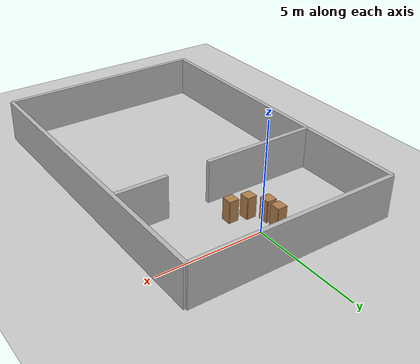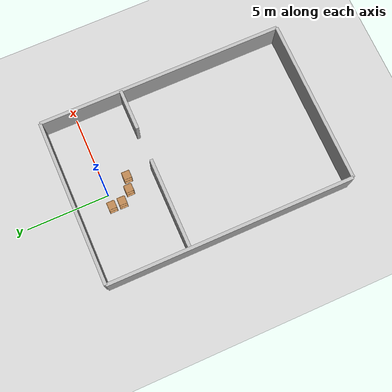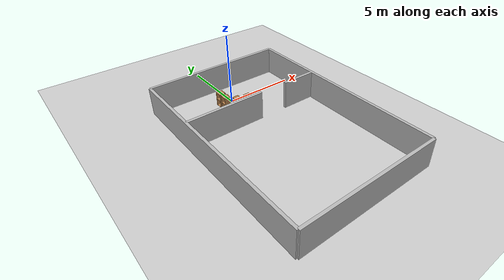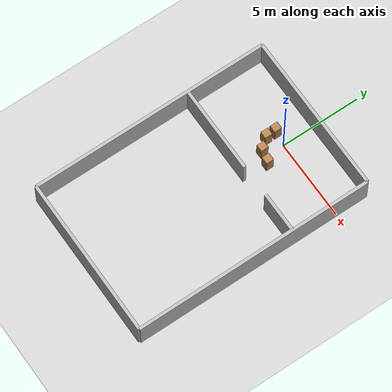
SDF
<sdf version="1.6">
 <world name="default">
  <physics name="default_physics" default="0" type="ode">
   <ode>
    <solver>
     <type>quick</type>
     <iters>20</iters>
     <sor>1</sor>
     <use_dynamic_moi_rescaling>0</use_dynamic_moi_rescaling>
    </solver>
    <constraints>
     <cfm>0</cfm>
     <erp>0.2</erp>
     <contact_max_correcting_vel>100</contact_max_correcting_vel>
     <contact_surface_layer>0</contact_surface_layer>
    </constraints>
   </ode>
   <real_time_update_rate>0</real_time_update_rate>
   <max_step_size>0.001</max_step_size>
   <real_time_factor>100</real_time_factor>
   <max_contacts>20</max_contacts>
  </physics>
  <light name="sun" type="directional">
   <pose>0 0 10 0 -0 0</pose>
   <diffuse>0.8 0.8 0.8 1</diffuse>
   <specular>0.2 0.2 0.2 1</specular>
   <attenuation>
    <range>1000</range>
    <constant>0.9</constant>
    <linear>0.01</linear>
    <quadratic>0.001</quadratic>
   </attenuation>
   <direction>0.5 0.1 -0.9</direction>
  </light>
  <model name="ground_plane">
   <static>1</static>
   <link name="link">
    <collision name="collision">
     <geometry><plane><normal>0 0 1</normal><size>100 100</size></plane></geometry>
     <surface><friction><ode><mu>100</mu><mu2>50</mu2></ode></friction></surface>
    </collision>
    <visual name="visual">
     <cast_shadows>0</cast_shadows>
     <geometry><plane><normal>0 0 1</normal><size>100 100</size></plane></geometry>
     <material>
      <script><uri>file://media/materials/scripts/gazebo.material</uri><name>Gazebo/Grey</name></script>
     </material>
    </visual>
    <velocity_decay><linear>0</linear><angular>0</angular></velocity_decay>
   </link>
  </model>
  <model name="wall_1_model">
   <pose>0 -13 1 0 -0 0</pose>
   <static>1</static>
   <link name="wall_1_body">
    <inertial>
     <mass>1</mass>
     <inertia><ixx>1</ixx><ixy>0</ixy><ixz>0</ixz><iyy>1</iyy><iyz>0</iyz><izz>1</izz></inertia>
    </inertial>
    <collision name="collision"><geometry><box><size>10 0.2 2</size></box></geometry></collision>
    <visual name="visual"><geometry><box><size>10 0.2 2</size></box></geometry></visual>
    <velocity_decay><linear>0</linear><angular>0</angular></velocity_decay>
   </link>
  </model>
  <model name="wall_2_model">
   <pose>0 2 1 0 -0 0</pose>
   <static>1</static>
   <link name="wall_2_body">
    <inertial>
     <mass>1</mass>
     <inertia><ixx>1</ixx><ixy>0</ixy><ixz>0</ixz><iyy>1</iyy><iyz>0</iyz><izz>1</izz></inertia>
    </inertial>
    <collision name="collision"><geometry><box><size>10 0.2 2</size></box></geometry></collision>
    <visual name="visual"><geometry><box><size>10 0.2 2</size></box></geometry></visual>
    <velocity_decay><linear>0</linear><angular>0</angular></velocity_decay>
   </link>
  </model>
  <model name="wall_3_model">
   <pose>-5 -5.5 1 0 -0 0</pose>
   <static>1</static>
   <link name="wall_3_body">
    <inertial>
     <mass>1</mass>
     <inertia><ixx>1</ixx><ixy>0</ixy><ixz>0</ixz><iyy>1</iyy><iyz>0</iyz><izz>1</izz></inertia>
    </inertial>
    <collision name="collision"><geometry><box><size>0.2 15 2</size></box></geometry></collision>
    <visual name="visual"><geometry><box><size>0.2 15 2</size></box></geometry></visual>
    <velocity_decay><linear>0</linear><angular>0</angular></velocity_decay>
   </link>
  </model>
  <model name="wall_4_model">
   <pose>5 -5.5 1 0 -0 0</pose>
   <static>1</static>
   <link name="wall_4_body">
    <inertial>
     <mass>1</mass>
     <inertia><ixx>1</ixx><ixy>0</ixy><ixz>0</ixz><iyy>1</iyy><iyz>0</iyz><izz>1</izz></inertia>
    </inertial>
    <collision name="collision"><geometry><box><size>0.2 15 2</size></box></geometry></collision>
    <visual name="visual"><geometry><box><size>0.2 15 2</size></box></geometry></visual>
    <velocity_decay><linear>0</linear><angular>0</angular></velocity_decay>
   </link>
  </model>
  <model name="wall_5_model">
   <pose>-2.25 -3 1 0 -0 0</pose>
   <static>1</static>
   <link name="wall_5_body">
    <inertial>
     <mass>1</mass>
     <inertia><ixx>1</ixx><ixy>0</ixy><ixz>0</ixz><iyy>1</iyy><iyz>0</iyz><izz>1</izz></inertia>
    </inertial>
    <collision name="collision"><geometry><box><size>5.5 0.2 2</size></box></geometry></collision>
    <visual name="visual"><geometry><box><size>5.5 0.2 2</size></box></geometry></visual>
    <velocity_decay><linear>0</linear><angular>0</angular></velocity_decay>
   </link>
  </model>
  <model name="wall_6_model">
   <pose>3.75 -3 1 0 -0 0</pose>
   <static>1</static>
   <link name="wall_6_body">
    <inertial>
     <mass>1</mass>
     <inertia><ixx>1</ixx><ixy>0</ixy><ixz>0</ixz><iyy>1</iyy><iyz>0</iyz><izz>1</izz></inertia>
    </inertial>
    <collision name="collision"><geometry><box><size>2.5 0.2 2</size></box></geometry></collision>
    <visual name="visual"><geometry><box><size>2.5 0.2 2</size></box></geometry></visual>
    <velocity_decay><linear>0</linear><angular>0</angular></velocity_decay>
   </link>
  </model>
  <scene><ambient>0.2 0.2 0.2 1</ambient><background>0.7 0.7 0.7 1</background><shadows>1</shadows></scene>
  <model name="cabinet_1">
   <static>0</static>
   <link name="cabinet_bottom_plate">
    <inertial>
     <pose>0 0 -1 0 -0 0</pose>
     <inertia><ixx>2.05</ixx><ixy>0</ixy><ixz>0</ixz><iyy>2.05</iyy><iyz>0</iyz><izz>2.05</izz></inertia>
     <mass>25</mass>
    </inertial>
    <collision name="cabinet_bottom_plate_geom">
     <pose>0 0 0.01 0 -0 0</pose>
     <geometry><box><size>0.45 0.45 0.02</size></box></geometry>
    </collision>
    <visual name="cabinet_bottom_plate_geom_visual">
     <pose>0 0 0.01 0 -0 0</pose>
     <geometry><box><size>0.45 0.45 0.02</size></box></geometry>
     <material>
      <script><uri>file://media/materials/scripts/gazebo.material</uri><name>Gazebo/Wood</name></script>
     </material>
    </visual>
    <collision name="cabinet_bottom_plate_geom_cabinet_back_plate">
     <pose>0.235 0 0.51 0 -0 0</pose>
     <geometry><box><size>0.02 0.45 1.02</size></box></geometry>
    </collision>
    <visual name="cabinet_bottom_plate_geom_cabinet_back_plate_visual">
     <pose>0.235 0 0.51 0 -0 0</pose>
     <geometry><box><size>0.02 0.45 1.02</size></box></geometry>
     <material>
      <script><uri>file://media/materials/scripts/gazebo.material</uri><name>Gazebo/Wood</name></script>
     </material>
    </visual>
    <collision name="cabinet_bottom_plate_geom_cabinet_left_plate">
     <pose>0 0.235 0.51 0 -0 0</pose>
     <geometry><box><size>0.45 0.02 1.02</size></box></geometry>
    </collision>
    <visual name="cabinet_bottom_plate_geom_cabinet_left_plate_visual">
     <pose>0 0.235 0.51 0 -0 0</pose>
     <geometry><box><size>0.45 0.02 1.02</size></box></geometry>
     <material>
      <script><uri>file://media/materials/scripts/gazebo.material</uri><name>Gazebo/Wood</name></script>
     </material>
    </visual>
    <collision name="cabinet_bottom_plate_geom_cabinet_middle_plate">
     <pose>0 0 0.51 0 -0 0</pose>
     <geometry><box><size>0.45 0.45 0.02</size></box></geometry>
    </collision>
    <visual name="cabinet_bottom_plate_geom_cabinet_middle_plate_visual">
     <pose>0 0 0.51 0 -0 0</pose>
     <geometry><box><size>0.45 0.45 0.02</size></box></geometry>
     <material>
      <script><uri>file://media/materials/scripts/gazebo.material</uri><name>Gazebo/Wood</name></script>
     </material>
    </visual>
    <collision name="cabinet_bottom_plate_geom_cabinet_right_plate">
     <pose>0 -0.235 0.51 0 -0 0</pose>
     <geometry><box><size>0.45 0.02 1.02</size></box></geometry>
    </collision>
    <visual name="cabinet_bottom_plate_geom_cabinet_right_plate_visual">
     <pose>0 -0.235 0.51 0 -0 0</pose>
     <geometry><box><size>0.45 0.02 1.02</size></box></geometry>
     <material>
      <script><uri>file://media/materials/scripts/gazebo.material</uri><name>Gazebo/Wood</name></script>
     </material>
    </visual>
    <collision name="cabinet_bottom_plate_geom_cabinet_top_plate">
     <pose>0 0 1.01 0 -0 0</pose>
     <geometry><box><size>0.45 0.45 0.02</size></box></geometry>
    </collision>
    <visual name="cabinet_bottom_plate_geom_cabinet_top_plate_visual">
     <pose>0 0 1.01 0 -0 0</pose>
     <geometry><box><size>0.45 0.45 0.02</size></box></geometry>
     <material>
      <script><uri>file://media/materials/scripts/gazebo.material</uri><name>Gazebo/Wood</name></script>
     </material>
    </visual>
    <velocity_decay><linear>0</linear><angular>0</angular></velocity_decay>
   </link>
   <pose>-0.828017 0.033601 -0 1e-06 -0 0.005649</pose>
  </model>
  <model name="cabinet_2">
   <static>0</static>
   <link name="cabinet_bottom_plate">
    <inertial>
     <pose>0 0 -1 0 -0 0</pose>
     <inertia><ixx>2.05</ixx><ixy>0</ixy><ixz>0</ixz><iyy>2.05</iyy><iyz>0</iyz><izz>2.05</izz></inertia>
     <mass>25</mass>
    </inertial>
    <collision name="cabinet_bottom_plate_geom">
     <pose>0 0 0.01 0 -0 0</pose>
     <geometry><box><size>0.45 0.45 0.02</size></box></geometry>
    </collision>
    <visual name="cabinet_bottom_plate_geom_visual">
     <pose>0 0 0.01 0 -0 0</pose>
     <geometry><box><size>0.45 0.45 0.02</size></box></geometry>
     <material>
      <script><uri>file://media/materials/scripts/gazebo.material</uri><name>Gazebo/Wood</name></script>
     </material>
    </visual>
    <collision name="cabinet_bottom_plate_geom_cabinet_back_plate">
     <pose>0.235 0 0.51 0 -0 0</pose>
     <geometry><box><size>0.02 0.45 1.02</size></box></geometry>
    </collision>
    <visual name="cabinet_bottom_plate_geom_cabinet_back_plate_visual">
     <pose>0.235 0 0.51 0 -0 0</pose>
     <geometry><box><size>0.02 0.45 1.02</size></box></geometry>
     <material>
      <script><uri>file://media/materials/scripts/gazebo.material</uri><name>Gazebo/Wood</name></script>
     </material>
    </visual>
    <collision name="cabinet_bottom_plate_geom_cabinet_left_plate">
     <pose>0 0.235 0.51 0 -0 0</pose>
     <geometry><box><size>0.45 0.02 1.02</size></box></geometry>
    </collision>
    <visual name="cabinet_bottom_plate_geom_cabinet_left_plate_visual">
     <pose>0 0.235 0.51 0 -0 0</pose>
     <geometry><box><size>0.45 0.02 1.02</size></box></geometry>
     <material>
      <script><uri>file://media/materials/scripts/gazebo.material</uri><name>Gazebo/Wood</name></script>
     </material>
    </visual>
    <collision name="cabinet_bottom_plate_geom_cabinet_middle_plate">
     <pose>0 0 0.51 0 -0 0</pose>
     <geometry><box><size>0.45 0.45 0.02</size></box></geometry>
    </collision>
    <visual name="cabinet_bottom_plate_geom_cabinet_middle_plate_visual">
     <pose>0 0 0.51 0 -0 0</pose>
     <geometry><box><size>0.45 0.45 0.02</size></box></geometry>
     <material>
      <script><uri>file://media/materials/scripts/gazebo.material</uri><name>Gazebo/Wood</name></script>
     </material>
    </visual>
    <collision name="cabinet_bottom_plate_geom_cabinet_right_plate">
     <pose>0 -0.235 0.51 0 -0 0</pose>
     <geometry><box><size>0.45 0.02 1.02</size></box></geometry>
    </collision>
    <visual name="cabinet_bottom_plate_geom_cabinet_right_plate_visual">
     <pose>0 -0.235 0.51 0 -0 0</pose>
     <geometry><box><size>0.45 0.02 1.02</size></box></geometry>
     <material>
      <script><uri>file://media/materials/scripts/gazebo.material</uri><name>Gazebo/Wood</name></script>
     </material>
    </visual>
    <collision name="cabinet_bottom_plate_geom_cabinet_top_plate">
     <pose>0 0 1.01 0 -0 0</pose>
     <geometry><box><size>0.45 0.45 0.02</size></box></geometry>
    </collision>
    <visual name="cabinet_bottom_plate_geom_cabinet_top_plate_visual">
     <pose>0 0 1.01 0 -0 0</pose>
     <geometry><box><size>0.45 0.45 0.02</size></box></geometry>
     <material>
      <script><uri>file://media/materials/scripts/gazebo.material</uri><name>Gazebo/Wood</name></script>
     </material>
    </visual>
    <velocity_decay><linear>0</linear><angular>0</angular></velocity_decay>
   </link>
   <pose>0.464789 -1.41827 -0 1e-06 -0 0.000698</pose>
  </model>
  <model name="cabinet_3">
   <static>0</static>
   <link name="cabinet_bottom_plate">
    <inertial>
     <pose>0 0 -1 0 -0 0</pose>
     <inertia><ixx>2.05</ixx><ixy>0</ixy><ixz>0</ixz><iyy>2.05</iyy><iyz>0</iyz><izz>2.05</izz></inertia>
     <mass>25</mass>
    </inertial>
    <collision name="cabinet_bottom_plate_geom">
     <pose>0 0 0.01 0 -0 0</pose>
     <geometry><box><size>0.45 0.45 0.02</size></box></geometry>
    </collision>
    <visual name="cabinet_bottom_plate_geom_visual">
     <pose>0 0 0.01 0 -0 0</pose>
     <geometry><box><size>0.45 0.45 0.02</size></box></geometry>
     <material>
      <script><uri>file://media/materials/scripts/gazebo.material</uri><name>Gazebo/Wood</name></script>
     </material>
    </visual>
    <collision name="cabinet_bottom_plate_geom_cabinet_back_plate">
     <pose>0.235 0 0.51 0 -0 0</pose>
     <geometry><box><size>0.02 0.45 1.02</size></box></geometry>
    </collision>
    <visual name="cabinet_bottom_plate_geom_cabinet_back_plate_visual">
     <pose>0.235 0 0.51 0 -0 0</pose>
     <geometry><box><size>0.02 0.45 1.02</size></box></geometry>
     <material>
      <script><uri>file://media/materials/scripts/gazebo.material</uri><name>Gazebo/Wood</name></script>
     </material>
    </visual>
    <collision name="cabinet_bottom_plate_geom_cabinet_left_plate">
     <pose>0 0.235 0.51 0 -0 0</pose>
     <geometry><box><size>0.45 0.02 1.02</size></box></geometry>
    </collision>
    <visual name="cabinet_bottom_plate_geom_cabinet_left_plate_visual">
     <pose>0 0.235 0.51 0 -0 0</pose>
     <geometry><box><size>0.45 0.02 1.02</size></box></geometry>
     <material>
      <script><uri>file://media/materials/scripts/gazebo.material</uri><name>Gazebo/Wood</name></script>
     </material>
    </visual>
    <collision name="cabinet_bottom_plate_geom_cabinet_middle_plate">
     <pose>0 0 0.51 0 -0 0</pose>
     <geometry><box><size>0.45 0.45 0.02</size></box></geometry>
    </collision>
    <visual name="cabinet_bottom_plate_geom_cabinet_middle_plate_visual">
     <pose>0 0 0.51 0 -0 0</pose>
     <geometry><box><size>0.45 0.45 0.02</size></box></geometry>
     <material>
      <script><uri>file://media/materials/scripts/gazebo.material</uri><name>Gazebo/Wood</name></script>
     </material>
    </visual>
    <collision name="cabinet_bottom_plate_geom_cabinet_right_plate">
     <pose>0 -0.235 0.51 0 -0 0</pose>
     <geometry><box><size>0.45 0.02 1.02</size></box></geometry>
    </collision>
    <visual name="cabinet_bottom_plate_geom_cabinet_right_plate_visual">
     <pose>0 -0.235 0.51 0 -0 0</pose>
     <geometry><box><size>0.45 0.02 1.02</size></box></geometry>
     <material>
      <script><uri>file://media/materials/scripts/gazebo.material</uri><name>Gazebo/Wood</name></script>
     </material>
    </visual>
    <collision name="cabinet_bottom_plate_geom_cabinet_top_plate">
     <pose>0 0 1.01 0 -0 0</pose>
     <geometry><box><size>0.45 0.45 0.02</size></box></geometry>
    </collision>
    <visual name="cabinet_bottom_plate_geom_cabinet_top_plate_visual">
     <pose>0 0 1.01 0 -0 0</pose>
     <geometry><box><size>0.45 0.45 0.02</size></box></geometry>
     <material>
      <script><uri>file://media/materials/scripts/gazebo.material</uri><name>Gazebo/Wood</name></script>
     </material>
    </visual>
    <velocity_decay><linear>0</linear><angular>0</angular></velocity_decay>
   </link>
   <pose>-0.823405 -0.60459 0 0 -1e-06 -0.013512</pose>
  </model>
  <model name="cabinet_4">
   <static>0</static>
   <link name="cabinet_bottom_plate">
    <inertial>
     <pose>0 0 -1 0 -0 0</pose>
     <inertia><ixx>2.05</ixx><ixy>0</ixy><ixz>0</ixz><iyy>2.05</iyy><iyz>0</iyz><izz>2.05</izz></inertia>
     <mass>25</mass>
    </inertial>
    <collision name="cabinet_bottom_plate_geom">
     <pose>0 0 0.01 0 -0 0</pose>
     <geometry><box><size>0.45 0.45 0.02</size></box></geometry>
    </collision>
    <visual name="cabinet_bottom_plate_geom_visual">
     <pose>0 0 0.01 0 -0 0</pose>
     <geometry><box><size>0.45 0.45 0.02</size></box></geometry>
     <material>
      <script><uri>file://media/materials/scripts/gazebo.material</uri><name>Gazebo/Wood</name></script>
     </material>
    </visual>
    <collision name="cabinet_bottom_plate_geom_cabinet_back_plate">
     <pose>0.235 0 0.51 0 -0 0</pose>
     <geometry><box><size>0.02 0.45 1.02</size></box></geometry>
    </collision>
    <visual name="cabinet_bottom_plate_geom_cabinet_back_plate_visual">
     <pose>0.235 0 0.51 0 -0 0</pose>
     <geometry><box><size>0.02 0.45 1.02</size></box></geometry>
     <material>
      <script><uri>file://media/materials/scripts/gazebo.material</uri><name>Gazebo/Wood</name></script>
     </material>
    </visual>
    <collision name="cabinet_bottom_plate_geom_cabinet_left_plate">
     <pose>0 0.235 0.51 0 -0 0</pose>
     <geometry><box><size>0.45 0.02 1.02</size></box></geometry>
    </collision>
    <visual name="cabinet_bottom_plate_geom_cabinet_left_plate_visual">
     <pose>0 0.235 0.51 0 -0 0</pose>
     <geometry><box><size>0.45 0.02 1.02</size></box></geometry>
     <material>
      <script><uri>file://media/materials/scripts/gazebo.material</uri><name>Gazebo/Wood</name></script>
     </material>
    </visual>
    <collision name="cabinet_bottom_plate_geom_cabinet_middle_plate">
     <pose>0 0 0.51 0 -0 0</pose>
     <geometry><box><size>0.45 0.45 0.02</size></box></geometry>
    </collision>
    <visual name="cabinet_bottom_plate_geom_cabinet_middle_plate_visual">
     <pose>0 0 0.51 0 -0 0</pose>
     <geometry><box><size>0.45 0.45 0.02</size></box></geometry>
     <material>
      <script><uri>file://media/materials/scripts/gazebo.material</uri><name>Gazebo/Wood</name></script>
     </material>
    </visual>
    <collision name="cabinet_bottom_plate_geom_cabinet_right_plate">
     <pose>0 -0.235 0.51 0 -0 0</pose>
     <geometry><box><size>0.45 0.02 1.02</size></box></geometry>
    </collision>
    <visual name="cabinet_bottom_plate_geom_cabinet_right_plate_visual">
     <pose>0 -0.235 0.51 0 -0 0</pose>
     <geometry><box><size>0.45 0.02 1.02</size></box></geometry>
     <material>
      <script><uri>file://media/materials/scripts/gazebo.material</uri><name>Gazebo/Wood</name></script>
     </material>
    </visual>
    <collision name="cabinet_bottom_plate_geom_cabinet_top_plate">
     <pose>0 0 1.01 0 -0 0</pose>
     <geometry><box><size>0.45 0.45 0.02</size></box></geometry>
    </collision>
    <visual name="cabinet_bottom_plate_geom_cabinet_top_plate_visual">
     <pose>0 0 1.01 0 -0 0</pose>
     <geometry><box><size>0.45 0.45 0.02</size></box></geometry>
     <material>
      <script><uri>file://media/materials/scripts/gazebo.material</uri><name>Gazebo/Wood</name></script>
     </material>
    </visual>
    <velocity_decay><linear>0</linear><angular>0</angular></velocity_decay>
   </link>
   <pose>-0.301641 -1.23357 0 -1e-06 -0 0.015475</pose>
  </model>
  <gravity>0 0 -9.81</gravity>
  <magnetic_field>6e-06 2.3e-05 -4.2e-05</magnetic_field>
  <atmosphere type="adiabatic"/>
  <audio><device>default</device></audio>
  <spherical_coordinates>
   <surface_model>EARTH_WGS84</surface_model>
   <latitude_deg>0</latitude_deg>
   <longitude_deg>0</longitude_deg>
   <elevation>0</elevation>
   <heading_deg>0</heading_deg>
  </spherical_coordinates>
 </world>
</sdf>
